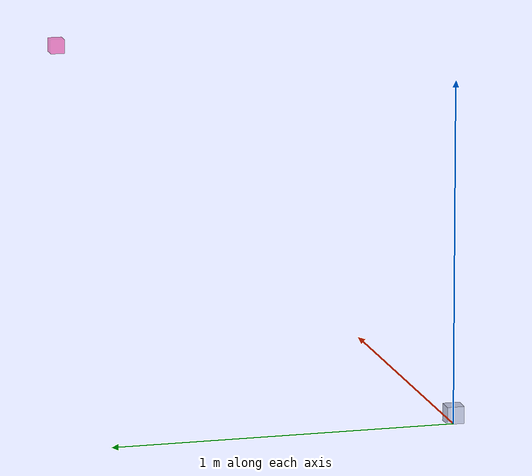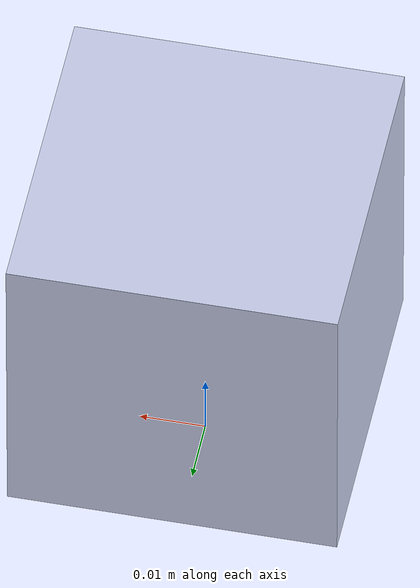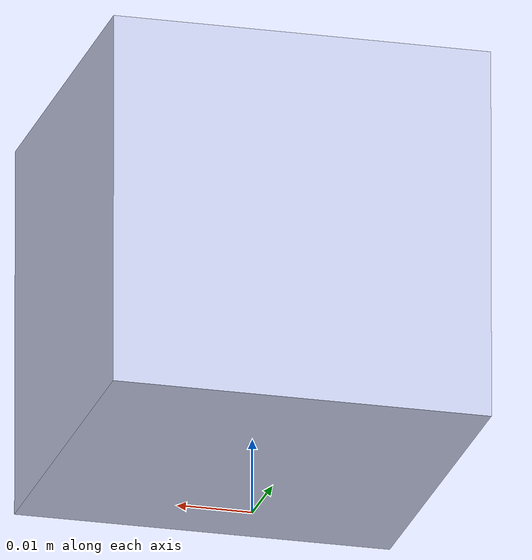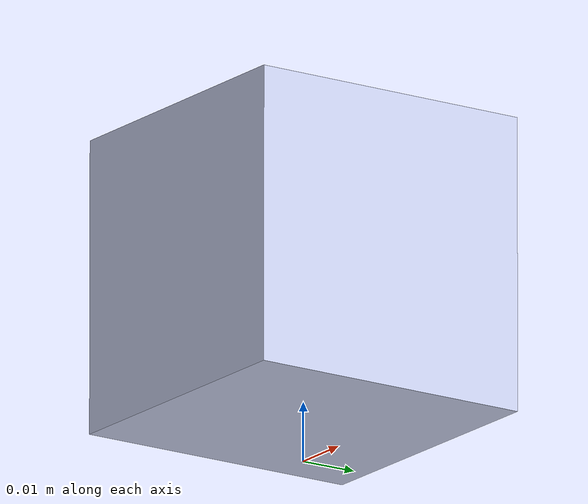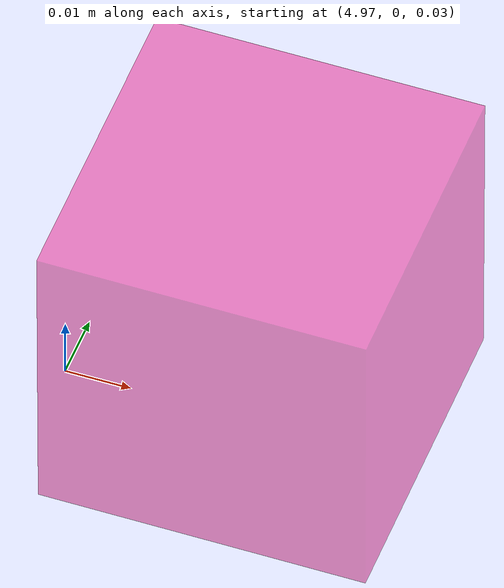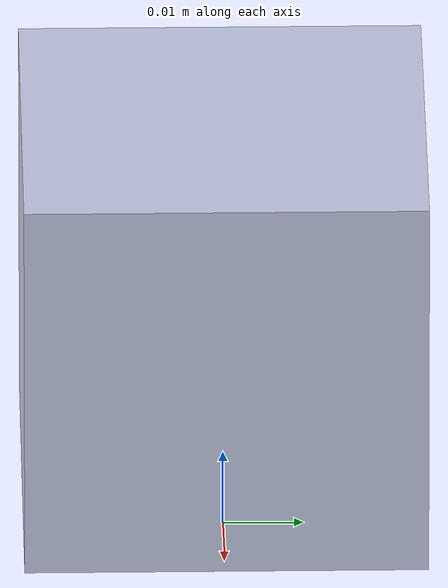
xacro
<?xml version = "1.0"?>
<robot name="car_model" xmlns:xacro="http://www.ros.org/wiki/xacro">

    <xacro:property name="arm_1_mass" value="3.0" />
    <xacro:property name="arm_1_a" value="0.05" />
    <xacro:property name="arm_1_b" value="0.05" />
    <xacro:property name="arm_1_c" value="0.05" />
    <xacro:property name="ns" value="123/" />

    <link name="${ns}world" />

    <joint name="${ns}world_joint" type="fixed">
      <parent link="${ns}world" />
      <child link = "${ns}base_link" />
      <origin xyz="0 0 0.0315" rpy="0.0 0.0 0.0" />
    </joint>
    <link name="${ns}base_link">
        <inertial>
            <origin xyz="0 0 0" rpy="0 0 0" />
            <mass value="100" />
            <inertia ixx="10" ixy="0.0" ixz="0.0" iyy="10" iyz="0.0" izz="10" />
        </inertial>
        <visual>
            <origin xyz="0 0 0" rpy="0 0 0" />
            <geometry>
                <box size="0.05 0.05 0.05" />
            </geometry>
            <material name="Grey">
                <color rgba="0.79216 0.81961 0.93333 1" />
            </material>
        </visual>
        <collision>
            <origin xyz="0 0 0" rpy="0 0 0" />
            <geometry>
                <box size="0.05 0.05 0.05" />
            </geometry>
        </collision>
    </link>

    <!-- arm1 -->
    <link name="${ns}arm_1">
        <collision>
            <origin
                xyz="0 0 ${arm_1_c / 2}"
                rpy="0 0 0" />
            <geometry>
                <box size="${arm_1_a} ${arm_1_b} ${arm_1_c}" />
            </geometry>
        </collision>
        <visual>
            <origin
                xyz="0 0 ${arm_1_c / 2}"
                rpy="0 0 0" />
            <geometry>
                <box size="${arm_1_a} ${arm_1_b} ${arm_1_c}" />
            </geometry>
            <material name="DeepPink" >
                <color rgba="1 0.0784 0.5764 0.5" />
            </material>
        </visual>
        <inertial>
            <origin
                xyz="0 0 ${arm_1_c / 2}"
                rpy="0 0 0" />
            <mass value="${arm_1_mass / 2}" />
            <inertia
                ixx="${arm_1_mass / 12.0 * (arm_1_b*arm_1_b + arm_1_c*arm_1_c)}"
                ixy="0.0"
                ixz="0.0"
                iyy="${arm_1_mass / 12.0 * (arm_1_a*arm_1_a + arm_1_c*arm_1_c)}"
                iyz="0.0"
                izz="${arm_1_mass / 12.0 * (arm_1_a*arm_1_a + arm_1_b*arm_1_b)}" />
        </inertial>
    </link>
    <joint name="${ns}joint_0_1" type="continuous">
        <axis xyz="0 0 1" rpy="0 0 0" />
        <parent link="${ns}base_link" />
        <child link="${ns}arm_1" />
        <origin xyz="5 0 0" rpy="0 0 0" />
        <limit effort="100" velocity="100" />
        <joint_properties damping="0" friction="0" />
    </joint>

    <!-- gazebo reference -->
    <gazebo reference="${ns}arm_1">
        <mu1>0.2</mu1>
        <mu2>0.2</mu2>
        <material>Gazebo/Green</material>
    </gazebo>

</robot>
